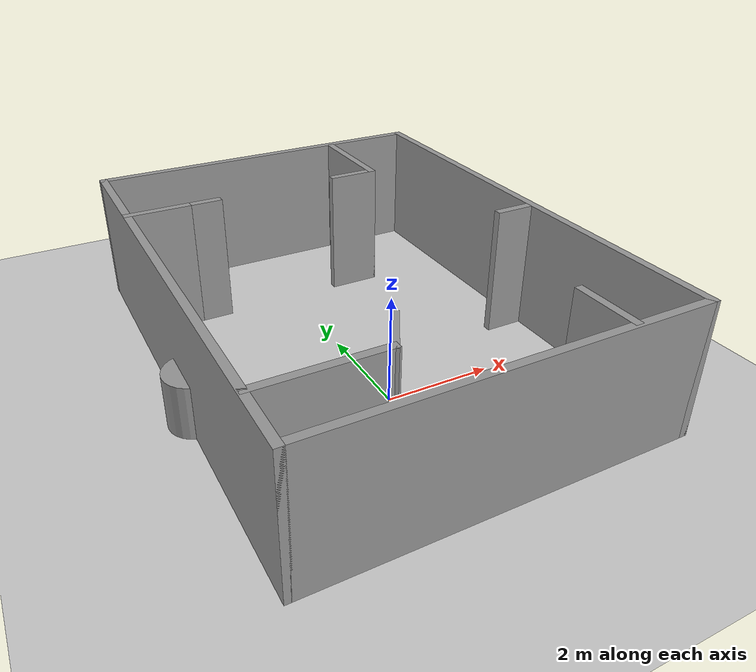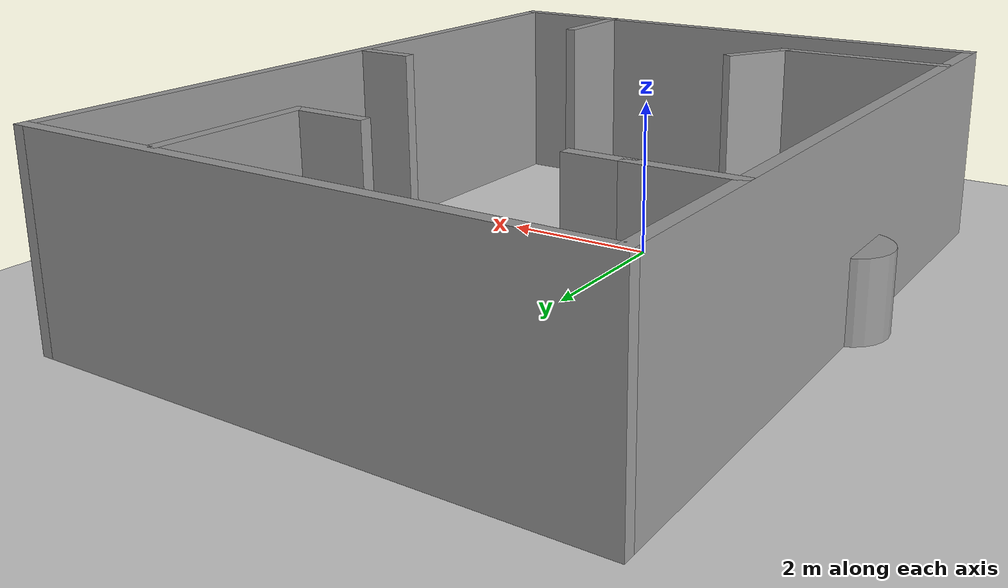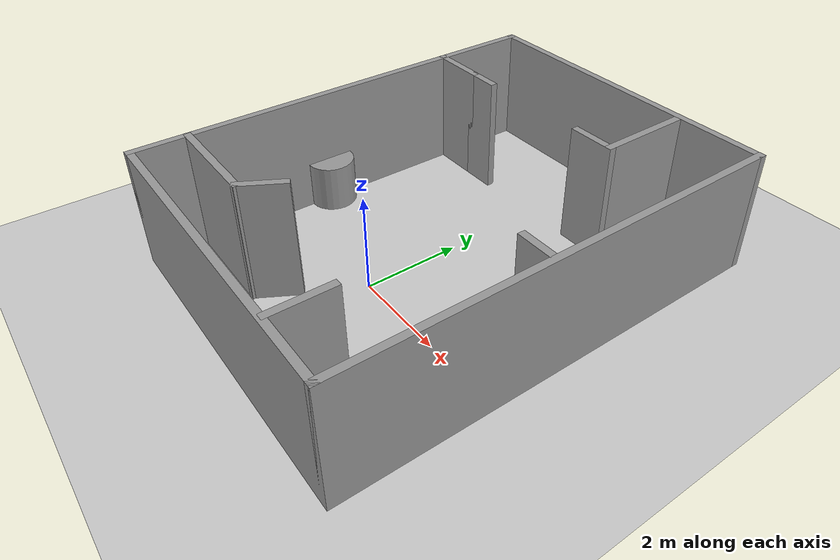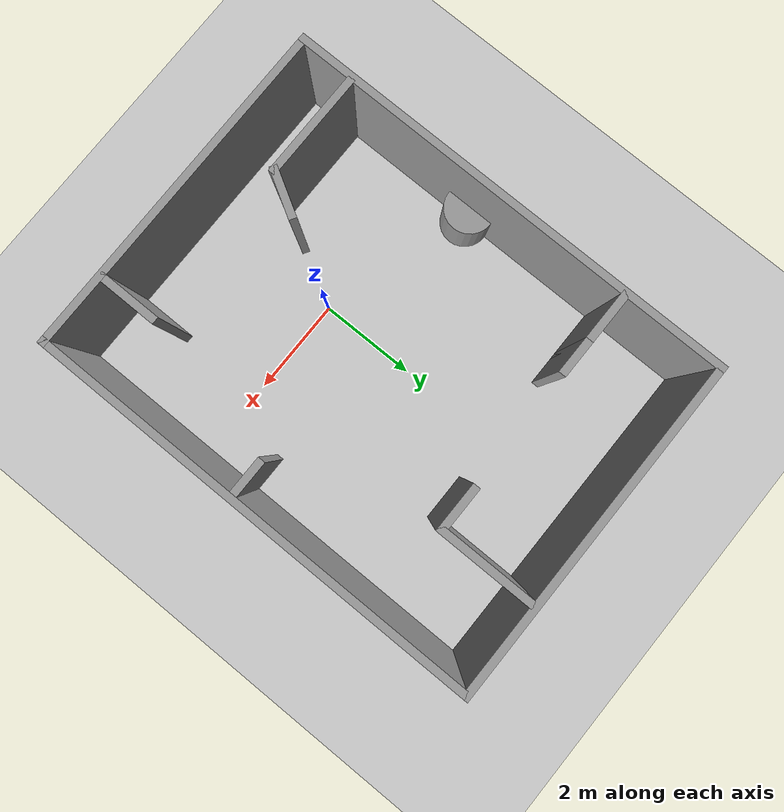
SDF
<sdf version="1.7">
 <world name="default">
  <light name="sun" type="directional">
   <pose>0 0 10 0 -0 0</pose>
   <diffuse>0.8 0.8 0.8 1</diffuse>
   <specular>0.2 0.2 0.2 1</specular>
   <attenuation>
    <range>1000</range>
    <constant>0.9</constant>
    <linear>0.01</linear>
    <quadratic>0.001</quadratic>
   </attenuation>
   <direction>-0.5 0.1 -0.9</direction>
   <spot><inner_angle>0</inner_angle><outer_angle>0</outer_angle><falloff>0</falloff></spot>
  </light>
  <model name="ground_plane">
   <static>1</static>
   <link name="link">
    <collision name="collision">
     <geometry><plane><normal>0 0 1</normal><size>100 100</size></plane></geometry>
     <surface><friction><ode><mu>100</mu><mu2>50</mu2></ode></friction></surface>
    </collision>
    <visual name="visual">
     <cast_shadows>0</cast_shadows>
     <geometry><plane><normal>0 0 1</normal><size>100 100</size></plane></geometry>
     <material>
      <script><uri>file://media/materials/scripts/gazebo.material</uri><name>Gazebo/Grey</name></script>
     </material>
    </visual>
   </link>
  </model>
  <gravity>0 0 -9.8</gravity>
  <magnetic_field>6e-06 2.3e-05 -4.2e-05</magnetic_field>
  <atmosphere type="adiabatic"/>
  <physics type="ode">
   <max_step_size>0.001</max_step_size>
   <real_time_factor>1</real_time_factor>
   <real_time_update_rate>1000</real_time_update_rate>
  </physics>
  <scene><ambient>0.4 0.4 0.4 1</ambient><background>0.7 0.7 0.7 1</background><shadows>1</shadows></scene>
  <audio><device>default</device></audio>
  <spherical_coordinates>
   <surface_model>EARTH_WGS84</surface_model>
   <latitude_deg>0</latitude_deg>
   <longitude_deg>0</longitude_deg>
   <elevation>0</elevation>
   <heading_deg>0</heading_deg>
  </spherical_coordinates>
  <model name="map4">
   <pose>0.254783 1.57886 0 0 -0 0</pose>
   <link name="Wall_11">
    <collision name="Wall_11_Collision">
     <geometry><box><size>2.25 0.15 2.5</size></box></geometry>
     <pose>0 0 1.25 0 -0 0</pose>
    </collision>
    <visual name="Wall_11_Visual">
     <pose>0 0 1.25 0 -0 0</pose>
     <geometry><box><size>2.25 0.15 2.5</size></box></geometry>
     <material>
      <script><uri>file://media/materials/scripts/gazebo.material</uri><name>Gazebo/Grey</name></script>
      <ambient>1 1 1 1</ambient>
     </material>
     <meta><layer>0</layer></meta>
    </visual>
    <pose>-2.35276 -3.44745 0 0 -0 0</pose>
   </link>
   <link name="Wall_14">
    <collision name="Wall_14_Collision">
     <geometry><box><size>1.25 0.15 2.5</size></box></geometry>
     <pose>0 0 1.25 0 -0 0</pose>
    </collision>
    <visual name="Wall_14_Visual">
     <pose>0 0 1.25 0 -0 0</pose>
     <geometry><box><size>1.25 0.15 2.5</size></box></geometry>
     <material>
      <script><uri>file://media/materials/scripts/gazebo.material</uri><name>Gazebo/Grey</name></script>
      <ambient>1 1 1 1</ambient>
     </material>
     <meta><layer>0</layer></meta>
    </visual>
    <pose>1.96757 -3.94335 0 0 -0 1.5708</pose>
   </link>
   <link name="Wall_16">
    <collision name="Wall_16_Collision">
     <geometry><box><size>2 0.15 2.5</size></box></geometry>
     <pose>0 0 1.25 0 -0 0</pose>
    </collision>
    <visual name="Wall_16_Visual">
     <pose>0 0 1.25 0 -0 0</pose>
     <geometry><box><size>2 0.15 2.5</size></box></geometry>
     <material>
      <script><uri>file://media/materials/scripts/gazebo.material</uri><name>Gazebo/Grey</name></script>
      <ambient>1 1 1 1</ambient>
     </material>
     <meta><layer>0</layer></meta>
    </visual>
    <pose>1.62252 3.51477 0 0 -0 -1.5708</pose>
   </link>
   <link name="Wall_18">
    <collision name="Wall_18_Collision">
     <geometry><box><size>1.25 0.15 2.5</size></box></geometry>
     <pose>0 0 1.25 0 -0 0</pose>
    </collision>
    <visual name="Wall_18_Visual">
     <pose>0 0 1.25 0 -0 0</pose>
     <geometry><box><size>1.25 0.15 2.5</size></box></geometry>
     <material>
      <script><uri>file://media/materials/scripts/gazebo.material</uri><name>Gazebo/Grey</name></script>
      <ambient>1 1 1 1</ambient>
     </material>
     <meta><layer>0</layer></meta>
    </visual>
    <pose>-2.86995 2.54306 0 0 -0 0</pose>
   </link>
   <link name="Wall_21">
    <collision name="Wall_21_Collision">
     <geometry><box><size>0.75 0.15 2.5</size></box></geometry>
     <pose>0 0 1.25 0 -0 0</pose>
    </collision>
    <visual name="Wall_21_Visual">
     <pose>0 0 1.25 0 -0 0</pose>
     <geometry><box><size>0.75 0.15 2.5</size></box></geometry>
     <material>
      <script><uri>file://media/materials/scripts/gazebo.material</uri><name>Gazebo/Grey</name></script>
      <ambient>1 1 1 1</ambient>
     </material>
     <meta><layer>0</layer></meta>
    </visual>
    <pose>2.98792 -0.44079 0 0 -0 3.14159</pose>
   </link>
   <link name="Wall_23">
    <collision name="Wall_23_Collision">
     <geometry><box><size>1 0.15 2.5</size></box></geometry>
     <pose>0 0 1.25 0 -0 0</pose>
    </collision>
    <visual name="Wall_23_Visual">
     <pose>0 0 1.25 0 -0 0</pose>
     <geometry><box><size>1 0.15 2.5</size></box></geometry>
     <material>
      <script><uri>file://media/materials/scripts/gazebo.material</uri><name>Gazebo/Grey</name></script>
      <ambient>1 1 1 1</ambient>
     </material>
     <meta><layer>0</layer></meta>
    </visual>
    <pose>1.19752 2.58977 0 0 -0 3.14159</pose>
   </link>
   <link name="Wall_25">
    <collision name="Wall_25_Collision">
     <geometry><box><size>1 0.15 2.5</size></box></geometry>
     <pose>0 0 1.25 0 -0 0</pose>
    </collision>
    <visual name="Wall_25_Visual">
     <pose>0 0 1.25 0 -0 0</pose>
     <geometry><box><size>1 0.15 2.5</size></box></geometry>
     <material>
      <script><uri>file://media/materials/scripts/gazebo.material</uri><name>Gazebo/Grey</name></script>
      <ambient>1 1 1 1</ambient>
     </material>
     <meta><layer>0</layer></meta>
    </visual>
    <pose>-1.09026 -3.07939 0 0 -0 1.0472</pose>
   </link>
   <link name="Wall_27">
    <collision name="Wall_27_Collision">
     <geometry><box><size>0.75 0.15 2.5</size></box></geometry>
     <pose>0 0 1.25 0 -0 0</pose>
    </collision>
    <visual name="Wall_27_Visual">
     <pose>0 0 1.25 0 -0 0</pose>
     <geometry><box><size>0.75 0.15 2.5</size></box></geometry>
     <material>
      <script><uri>file://media/materials/scripts/gazebo.material</uri><name>Gazebo/Grey</name></script>
      <ambient>1 1 1 1</ambient>
     </material>
     <meta><layer>0</layer></meta>
    </visual>
    <pose>-2.01995 2.54306 0 0 -0 0</pose>
   </link>
   <link name="Wall_4">
    <collision name="Wall_4_Collision">
     <geometry><box><size>9.25 0.15 2.5</size></box></geometry>
     <pose>0 0 1.25 0 -0 0</pose>
    </collision>
    <visual name="Wall_4_Visual">
     <pose>0 0 1.25 0 -0 0</pose>
     <geometry><box><size>9.25 0.15 2.5</size></box></geometry>
     <material>
      <script><uri>file://media/materials/scripts/gazebo.material</uri><name>Gazebo/Grey</name></script>
      <ambient>1 1 1 1</ambient>
     </material>
     <meta><layer>0</layer></meta>
    </visual>
    <pose>-3.425 -0 0 0 -0 -1.5708</pose>
   </link>
   <link name="Wall_5">
    <collision name="Wall_5_Collision">
     <geometry><box><size>7 0.15 2.5</size></box></geometry>
     <pose>0 0 1.25 0 -0 0</pose>
    </collision>
    <visual name="Wall_5_Visual">
     <pose>0 0 1.25 0 -0 0</pose>
     <geometry><box><size>7 0.15 2.5</size></box></geometry>
     <material>
      <script><uri>file://media/materials/scripts/gazebo.material</uri><name>Gazebo/Grey</name></script>
      <ambient>1 1 1 1</ambient>
     </material>
     <meta><layer>0</layer></meta>
    </visual>
    <pose>0 -4.55 0 0 -0 0</pose>
   </link>
   <link name="Wall_6">
    <collision name="Wall_6_Collision">
     <geometry><box><size>9.25 0.15 2.5</size></box></geometry>
     <pose>0 0 1.25 0 -0 0</pose>
    </collision>
    <visual name="Wall_6_Visual">
     <pose>0 0 1.25 0 -0 0</pose>
     <geometry><box><size>9.25 0.15 2.5</size></box></geometry>
     <material>
      <script><uri>file://media/materials/scripts/gazebo.material</uri><name>Gazebo/Grey</name></script>
      <ambient>1 1 1 1</ambient>
     </material>
     <meta><layer>0</layer></meta>
    </visual>
    <pose>3.425 -0 0 0 -0 1.5708</pose>
   </link>
   <link name="Wall_7">
    <collision name="Wall_7_Collision">
     <geometry><box><size>7 0.15 2.5</size></box></geometry>
     <pose>0 0 1.25 0 -0 0</pose>
    </collision>
    <visual name="Wall_7_Visual">
     <pose>0 0 1.25 0 -0 0</pose>
     <geometry><box><size>7 0.15 2.5</size></box></geometry>
     <material>
      <script><uri>file://media/materials/scripts/gazebo.material</uri><name>Gazebo/Grey</name></script>
      <ambient>1 1 1 1</ambient>
     </material>
     <meta><layer>0</layer></meta>
    </visual>
    <pose>0 4.55 0 0 -0 3.14159</pose>
   </link>
   <static>1</static>
  </model>
  <model name="unit_cylinder">
   <pose>-3.07502 1.00106 0.499992 -3e-06 -4e-06 -0</pose>
   <link name="link">
    <inertial>
     <mass>1</mass>
     <inertia><ixx>0.145833</ixx><ixy>0</ixy><ixz>0</ixz><iyy>0.145833</iyy><iyz>0</iyz><izz>0.125</izz></inertia>
    </inertial>
    <collision name="collision">
     <geometry><cylinder><radius>0.5</radius><length>1</length></cylinder></geometry>
    </collision>
    <visual name="visual">
     <geometry><cylinder><radius>0.5</radius><length>1</length></cylinder></geometry>
     <material>
      <script><name>Gazebo/Grey</name><uri>file://media/materials/scripts/gazebo.material</uri></script>
     </material>
    </visual>
   </link>
  </model>
 </world>
</sdf>
